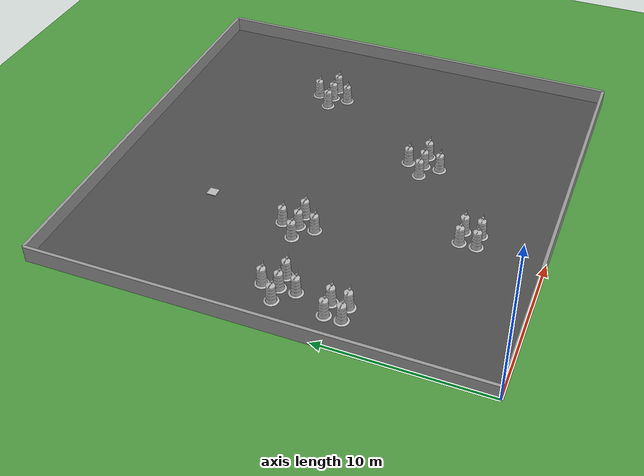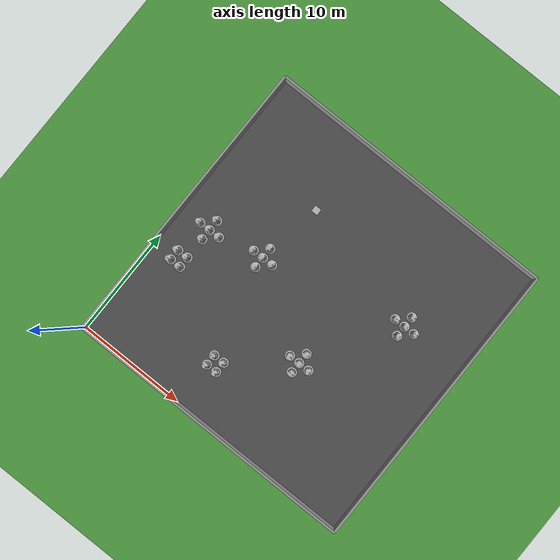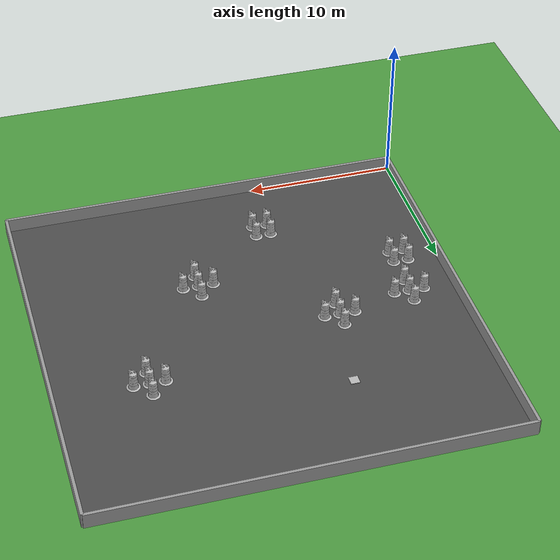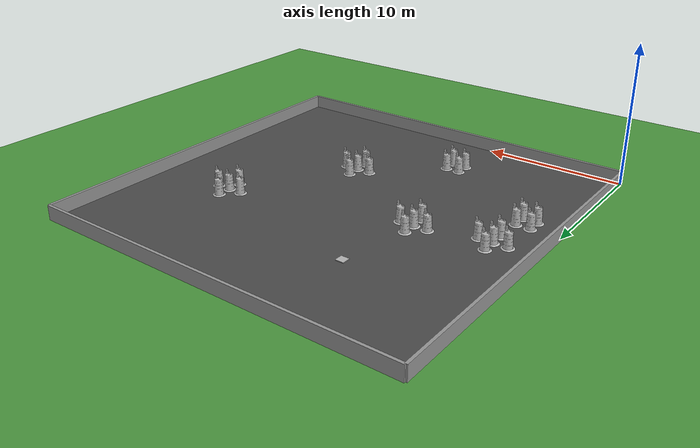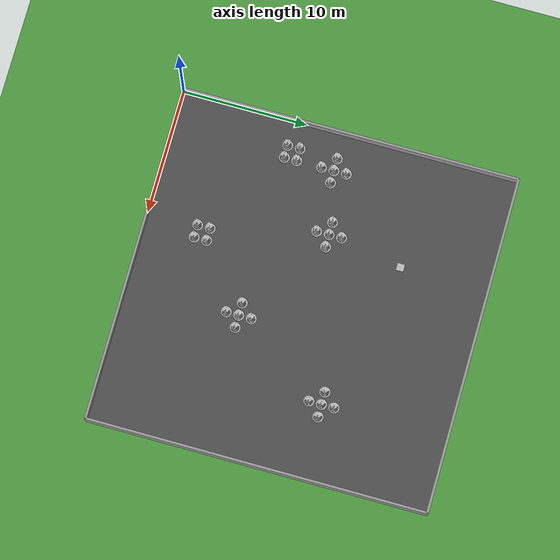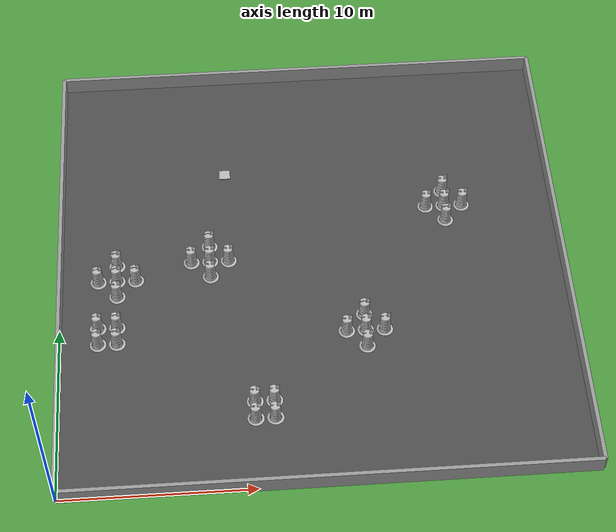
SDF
<sdf version="1.4">
 <world name="default">
  <model name="vrc_driving_terrain">
   <static>1</static>
   <link name="grass_plane">
    <visual name="visual_0">
     <cast_shadows>0</cast_shadows>
     <geometry><plane><normal>0 0 1</normal><size>150 150</size></plane></geometry>
     <material>
      <script>
       <uri>model://vrc_driving_terrain/materials/scripts</uri>
       <uri>model://vrc_driving_terrain/materials/textures</uri>
       <name>vrc/grass</name>
      </script>
     </material>
    </visual>
   </link>
   <pose>0 0 0.01 0 -0 0</pose>
  </model>
  <include><uri>model://ground_plane</uri></include>
  <include><uri>model://sun</uri></include>
  <plugin filename="librotors_gazebo_ros_interface_plugin.so" name="ros_interface_plugin"/>
  <spherical_coordinates>
   <surface_model>EARTH_WGS84</surface_model>
   <latitude_deg>47.3667</latitude_deg>
   <longitude_deg>8.5500</longitude_deg>
   <elevation>500.0</elevation>
   <heading_deg>0</heading_deg>
  </spherical_coordinates>
  <physics type="ode">
   <ode>
    <solver><type>quick</type><iters>1000</iters><sor>1.3</sor></solver>
    <constraints>
     <cfm>0</cfm>
     <erp>0.2</erp>
     <contact_max_correcting_vel>100</contact_max_correcting_vel>
     <contact_surface_layer>0.001</contact_surface_layer>
    </constraints>
   </ode>
   <max_step_size>0.01</max_step_size>
   <real_time_factor>1</real_time_factor>
   <real_time_update_rate>100</real_time_update_rate>
   <gravity>0 0 -9.8</gravity>
  </physics>
  <model name="box_target_green">
   <static>1</static>
   <link name="link">
    <pose>9 20 0 0 0 0</pose>
    <collision name="collision"><geometry><box><size>6 6 2</size></box></geometry></collision>
    <visual name="visual">
     <geometry>
      <mesh><uri>model://box_target_green/meshes/mesh.dae</uri><scale>0.1 0.1 0.1</scale></mesh>
     </geometry>
    </visual>
   </link>
  </model>
  <model name="grey_wall">
   <static>1</static>
   <link name="link">
    <visual name="visual">
     <cast_shadows>0</cast_shadows>
     <geometry><box><size>27 0.2 2</size></box></geometry>
     <material>
      <script>
       <uri>model://grey_wall/materials/scripts</uri>
       <uri>model://grey_wall/materials/textures</uri>
       <name>vrc/grey_wall</name>
      </script>
     </material>
    </visual>
   </link>
   <pose>13.5 0 0 0 0 0</pose>
  </model>
  <model name="grey_wall">
   <static>1</static>
   <link name="link">
    <visual name="visual">
     <cast_shadows>0</cast_shadows>
     <geometry><box><size>27 0.2 2</size></box></geometry>
     <material>
      <script>
       <uri>model://grey_wall/materials/scripts</uri>
       <uri>model://grey_wall/materials/textures</uri>
       <name>vrc/grey_wall</name>
      </script>
     </material>
    </visual>
   </link>
   <pose>0 13.5 0 0 0 1.57079632679</pose>
  </model>
  <model name="grey_wall">
   <static>1</static>
   <link name="link">
    <visual name="visual">
     <cast_shadows>0</cast_shadows>
     <geometry><box><size>27 0.2 2</size></box></geometry>
     <material>
      <script>
       <uri>model://grey_wall/materials/scripts</uri>
       <uri>model://grey_wall/materials/textures</uri>
       <name>vrc/grey_wall</name>
      </script>
     </material>
    </visual>
   </link>
   <pose>27 13.5 0 0 0 -1.57079632679</pose>
  </model>
  <model name="grey_wall">
   <static>1</static>
   <link name="link">
    <visual name="visual">
     <cast_shadows>0</cast_shadows>
     <geometry><box><size>27 0.2 2</size></box></geometry>
     <material>
      <script>
       <uri>model://grey_wall/materials/scripts</uri>
       <uri>model://grey_wall/materials/textures</uri>
       <name>vrc/grey_wall</name>
      </script>
     </material>
    </visual>
   </link>
   <pose>13.5 27 0 0 0 3.14159265359</pose>
  </model>
  <model name="asphalt_plane">
   <static>1</static>
   <link name="link">
    <visual name="visual">
     <cast_shadows>0</cast_shadows>
     <geometry><box><size>27 27 0.1</size></box></geometry>
     <material>
      <script>
       <uri>model://asphalt_plane/materials/scripts</uri>
       <uri>model://asphalt_plane/materials/textures</uri>
       <name>vrc/asphalt</name>
      </script>
     </material>
    </visual>
   </link>
   <pose>13.5 13.5 0 0 0 0</pose>
  </model>
  <model name="Construction Barrel">
   <link name="link">
    <collision name="collision">
     <geometry>
      <mesh><uri>model://construction_barrel/meshes/construction_barrel.dae</uri><scale>1 1 1</scale></mesh>
     </geometry>
    </collision>
    <visual name="visual">
     <geometry><mesh><uri>model://construction_barrel/meshes/construction_barrel.dae</uri></mesh></geometry>
    </visual>
   </link>
   <pose>2 9 0 0 0 0</pose>
   <static>1</static>
  </model>
  <model name="Construction Barrel">
   <link name="link">
    <collision name="collision">
     <geometry>
      <mesh><uri>model://construction_barrel/meshes/construction_barrel.dae</uri><scale>1 1 1</scale></mesh>
     </geometry>
    </collision>
    <visual name="visual">
     <geometry><mesh><uri>model://construction_barrel/meshes/construction_barrel.dae</uri></mesh></geometry>
    </visual>
   </link>
   <pose>2 10 0 0 0 0</pose>
   <static>1</static>
  </model>
  <model name="Construction Barrel">
   <link name="link">
    <collision name="collision">
     <geometry>
      <mesh><uri>model://construction_barrel/meshes/construction_barrel.dae</uri><scale>1 1 1</scale></mesh>
     </geometry>
    </collision>
    <visual name="visual">
     <geometry><mesh><uri>model://construction_barrel/meshes/construction_barrel.dae</uri></mesh></geometry>
    </visual>
   </link>
   <pose>2 13 0 0 0 0</pose>
   <static>1</static>
  </model>
  <model name="Construction Barrel">
   <link name="link">
    <collision name="collision">
     <geometry>
      <mesh><uri>model://construction_barrel/meshes/construction_barrel.dae</uri><scale>1 1 1</scale></mesh>
     </geometry>
    </collision>
    <visual name="visual">
     <geometry><mesh><uri>model://construction_barrel/meshes/construction_barrel.dae</uri></mesh></geometry>
    </visual>
   </link>
   <pose>3 9 0 0 0 0</pose>
   <static>1</static>
  </model>
  <model name="Construction Barrel">
   <link name="link">
    <collision name="collision">
     <geometry>
      <mesh><uri>model://construction_barrel/meshes/construction_barrel.dae</uri><scale>1 1 1</scale></mesh>
     </geometry>
    </collision>
    <visual name="visual">
     <geometry><mesh><uri>model://construction_barrel/meshes/construction_barrel.dae</uri></mesh></geometry>
    </visual>
   </link>
   <pose>3 10 0 0 0 0</pose>
   <static>1</static>
  </model>
  <model name="Construction Barrel">
   <link name="link">
    <collision name="collision">
     <geometry>
      <mesh><uri>model://construction_barrel/meshes/construction_barrel.dae</uri><scale>1 1 1</scale></mesh>
     </geometry>
    </collision>
    <visual name="visual">
     <geometry><mesh><uri>model://construction_barrel/meshes/construction_barrel.dae</uri></mesh></geometry>
    </visual>
   </link>
   <pose>3 12 0 0 0 0</pose>
   <static>1</static>
  </model>
  <model name="Construction Barrel">
   <link name="link">
    <collision name="collision">
     <geometry>
      <mesh><uri>model://construction_barrel/meshes/construction_barrel.dae</uri><scale>1 1 1</scale></mesh>
     </geometry>
    </collision>
    <visual name="visual">
     <geometry><mesh><uri>model://construction_barrel/meshes/construction_barrel.dae</uri></mesh></geometry>
    </visual>
   </link>
   <pose>3 13 0 0 0 0</pose>
   <static>1</static>
  </model>
  <model name="Construction Barrel">
   <link name="link">
    <collision name="collision">
     <geometry>
      <mesh><uri>model://construction_barrel/meshes/construction_barrel.dae</uri><scale>1 1 1</scale></mesh>
     </geometry>
    </collision>
    <visual name="visual">
     <geometry><mesh><uri>model://construction_barrel/meshes/construction_barrel.dae</uri></mesh></geometry>
    </visual>
   </link>
   <pose>3 14 0 0 0 0</pose>
   <static>1</static>
  </model>
  <model name="Construction Barrel">
   <link name="link">
    <collision name="collision">
     <geometry>
      <mesh><uri>model://construction_barrel/meshes/construction_barrel.dae</uri><scale>1 1 1</scale></mesh>
     </geometry>
    </collision>
    <visual name="visual">
     <geometry><mesh><uri>model://construction_barrel/meshes/construction_barrel.dae</uri></mesh></geometry>
    </visual>
   </link>
   <pose>4 13 0 0 0 0</pose>
   <static>1</static>
  </model>
  <model name="Construction Barrel">
   <link name="link">
    <collision name="collision">
     <geometry>
      <mesh><uri>model://construction_barrel/meshes/construction_barrel.dae</uri><scale>1 1 1</scale></mesh>
     </geometry>
    </collision>
    <visual name="visual">
     <geometry><mesh><uri>model://construction_barrel/meshes/construction_barrel.dae</uri></mesh></geometry>
    </visual>
   </link>
   <pose>7 14 0 0 0 0</pose>
   <static>1</static>
  </model>
  <model name="Construction Barrel">
   <link name="link">
    <collision name="collision">
     <geometry>
      <mesh><uri>model://construction_barrel/meshes/construction_barrel.dae</uri><scale>1 1 1</scale></mesh>
     </geometry>
    </collision>
    <visual name="visual">
     <geometry><mesh><uri>model://construction_barrel/meshes/construction_barrel.dae</uri></mesh></geometry>
    </visual>
   </link>
   <pose>8 13 0 0 0 0</pose>
   <static>1</static>
  </model>
  <model name="Construction Barrel">
   <link name="link">
    <collision name="collision">
     <geometry>
      <mesh><uri>model://construction_barrel/meshes/construction_barrel.dae</uri><scale>1 1 1</scale></mesh>
     </geometry>
    </collision>
    <visual name="visual">
     <geometry><mesh><uri>model://construction_barrel/meshes/construction_barrel.dae</uri></mesh></geometry>
    </visual>
   </link>
   <pose>8 14 0 0 0 0</pose>
   <static>1</static>
  </model>
  <model name="Construction Barrel">
   <link name="link">
    <collision name="collision">
     <geometry>
      <mesh><uri>model://construction_barrel/meshes/construction_barrel.dae</uri><scale>1 1 1</scale></mesh>
     </geometry>
    </collision>
    <visual name="visual">
     <geometry><mesh><uri>model://construction_barrel/meshes/construction_barrel.dae</uri></mesh></geometry>
    </visual>
   </link>
   <pose>8 15 0 0 0 0</pose>
   <static>1</static>
  </model>
  <model name="Construction Barrel">
   <link name="link">
    <collision name="collision">
     <geometry>
      <mesh><uri>model://construction_barrel/meshes/construction_barrel.dae</uri><scale>1 1 1</scale></mesh>
     </geometry>
    </collision>
    <visual name="visual">
     <geometry><mesh><uri>model://construction_barrel/meshes/construction_barrel.dae</uri></mesh></geometry>
    </visual>
   </link>
   <pose>9 14 0 0 0 0</pose>
   <static>1</static>
  </model>
  <model name="Construction Barrel">
   <link name="link">
    <collision name="collision">
     <geometry>
      <mesh><uri>model://construction_barrel/meshes/construction_barrel.dae</uri><scale>1 1 1</scale></mesh>
     </geometry>
    </collision>
    <visual name="visual">
     <geometry><mesh><uri>model://construction_barrel/meshes/construction_barrel.dae</uri></mesh></geometry>
    </visual>
   </link>
   <pose>10 4 0 0 0 0</pose>
   <static>1</static>
  </model>
  <model name="Construction Barrel">
   <link name="link">
    <collision name="collision">
     <geometry>
      <mesh><uri>model://construction_barrel/meshes/construction_barrel.dae</uri><scale>1 1 1</scale></mesh>
     </geometry>
    </collision>
    <visual name="visual">
     <geometry><mesh><uri>model://construction_barrel/meshes/construction_barrel.dae</uri></mesh></geometry>
    </visual>
   </link>
   <pose>10 5 0 0 0 0</pose>
   <static>1</static>
  </model>
  <model name="Construction Barrel">
   <link name="link">
    <collision name="collision">
     <geometry>
      <mesh><uri>model://construction_barrel/meshes/construction_barrel.dae</uri><scale>1 1 1</scale></mesh>
     </geometry>
    </collision>
    <visual name="visual">
     <geometry><mesh><uri>model://construction_barrel/meshes/construction_barrel.dae</uri></mesh></geometry>
    </visual>
   </link>
   <pose>11 4 0 0 0 0</pose>
   <static>1</static>
  </model>
  <model name="Construction Barrel">
   <link name="link">
    <collision name="collision">
     <geometry>
      <mesh><uri>model://construction_barrel/meshes/construction_barrel.dae</uri><scale>1 1 1</scale></mesh>
     </geometry>
    </collision>
    <visual name="visual">
     <geometry><mesh><uri>model://construction_barrel/meshes/construction_barrel.dae</uri></mesh></geometry>
    </visual>
   </link>
   <pose>11 5 0 0 0 0</pose>
   <static>1</static>
  </model>
  <model name="Construction Barrel">
   <link name="link">
    <collision name="collision">
     <geometry>
      <mesh><uri>model://construction_barrel/meshes/construction_barrel.dae</uri><scale>1 1 1</scale></mesh>
     </geometry>
    </collision>
    <visual name="visual">
     <geometry><mesh><uri>model://construction_barrel/meshes/construction_barrel.dae</uri></mesh></geometry>
    </visual>
   </link>
   <pose>15 9 0 0 0 0</pose>
   <static>1</static>
  </model>
  <model name="Construction Barrel">
   <link name="link">
    <collision name="collision">
     <geometry>
      <mesh><uri>model://construction_barrel/meshes/construction_barrel.dae</uri><scale>1 1 1</scale></mesh>
     </geometry>
    </collision>
    <visual name="visual">
     <geometry><mesh><uri>model://construction_barrel/meshes/construction_barrel.dae</uri></mesh></geometry>
    </visual>
   </link>
   <pose>16 8 0 0 0 0</pose>
   <static>1</static>
  </model>
  <model name="Construction Barrel">
   <link name="link">
    <collision name="collision">
     <geometry>
      <mesh><uri>model://construction_barrel/meshes/construction_barrel.dae</uri><scale>1 1 1</scale></mesh>
     </geometry>
    </collision>
    <visual name="visual">
     <geometry><mesh><uri>model://construction_barrel/meshes/construction_barrel.dae</uri></mesh></geometry>
    </visual>
   </link>
   <pose>16 9 0 0 0 0</pose>
   <static>1</static>
  </model>
  <model name="Construction Barrel">
   <link name="link">
    <collision name="collision">
     <geometry>
      <mesh><uri>model://construction_barrel/meshes/construction_barrel.dae</uri><scale>1 1 1</scale></mesh>
     </geometry>
    </collision>
    <visual name="visual">
     <geometry><mesh><uri>model://construction_barrel/meshes/construction_barrel.dae</uri></mesh></geometry>
    </visual>
   </link>
   <pose>16 10 0 0 0 0</pose>
   <static>1</static>
  </model>
  <model name="Construction Barrel">
   <link name="link">
    <collision name="collision">
     <geometry>
      <mesh><uri>model://construction_barrel/meshes/construction_barrel.dae</uri><scale>1 1 1</scale></mesh>
     </geometry>
    </collision>
    <visual name="visual">
     <geometry><mesh><uri>model://construction_barrel/meshes/construction_barrel.dae</uri></mesh></geometry>
    </visual>
   </link>
   <pose>17 9 0 0 0 0</pose>
   <static>1</static>
  </model>
  <model name="Construction Barrel">
   <link name="link">
    <collision name="collision">
     <geometry>
      <mesh><uri>model://construction_barrel/meshes/construction_barrel.dae</uri><scale>1 1 1</scale></mesh>
     </geometry>
    </collision>
    <visual name="visual">
     <geometry><mesh><uri>model://construction_barrel/meshes/construction_barrel.dae</uri></mesh></geometry>
    </visual>
   </link>
   <pose>20 17 0 0 0 0</pose>
   <static>1</static>
  </model>
  <model name="Construction Barrel">
   <link name="link">
    <collision name="collision">
     <geometry>
      <mesh><uri>model://construction_barrel/meshes/construction_barrel.dae</uri><scale>1 1 1</scale></mesh>
     </geometry>
    </collision>
    <visual name="visual">
     <geometry><mesh><uri>model://construction_barrel/meshes/construction_barrel.dae</uri></mesh></geometry>
    </visual>
   </link>
   <pose>21 16 0 0 0 0</pose>
   <static>1</static>
  </model>
  <model name="Construction Barrel">
   <link name="link">
    <collision name="collision">
     <geometry>
      <mesh><uri>model://construction_barrel/meshes/construction_barrel.dae</uri><scale>1 1 1</scale></mesh>
     </geometry>
    </collision>
    <visual name="visual">
     <geometry><mesh><uri>model://construction_barrel/meshes/construction_barrel.dae</uri></mesh></geometry>
    </visual>
   </link>
   <pose>21 17 0 0 0 0</pose>
   <static>1</static>
  </model>
  <model name="Construction Barrel">
   <link name="link">
    <collision name="collision">
     <geometry>
      <mesh><uri>model://construction_barrel/meshes/construction_barrel.dae</uri><scale>1 1 1</scale></mesh>
     </geometry>
    </collision>
    <visual name="visual">
     <geometry><mesh><uri>model://construction_barrel/meshes/construction_barrel.dae</uri></mesh></geometry>
    </visual>
   </link>
   <pose>21 18 0 0 0 0</pose>
   <static>1</static>
  </model>
  <model name="Construction Barrel">
   <link name="link">
    <collision name="collision">
     <geometry>
      <mesh><uri>model://construction_barrel/meshes/construction_barrel.dae</uri><scale>1 1 1</scale></mesh>
     </geometry>
    </collision>
    <visual name="visual">
     <geometry><mesh><uri>model://construction_barrel/meshes/construction_barrel.dae</uri></mesh></geometry>
    </visual>
   </link>
   <pose>22 17 0 0 0 0</pose>
   <static>1</static>
  </model>
 </world>
</sdf>
